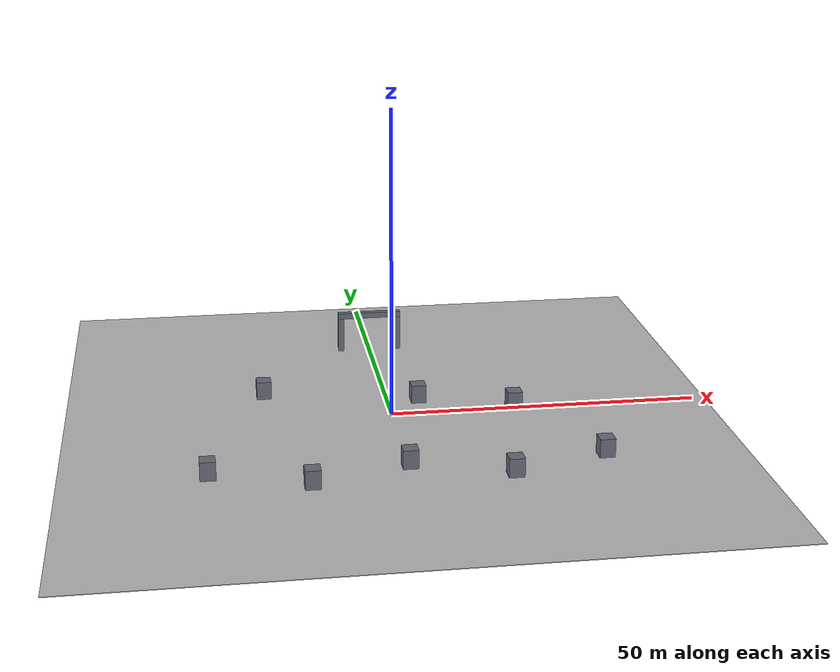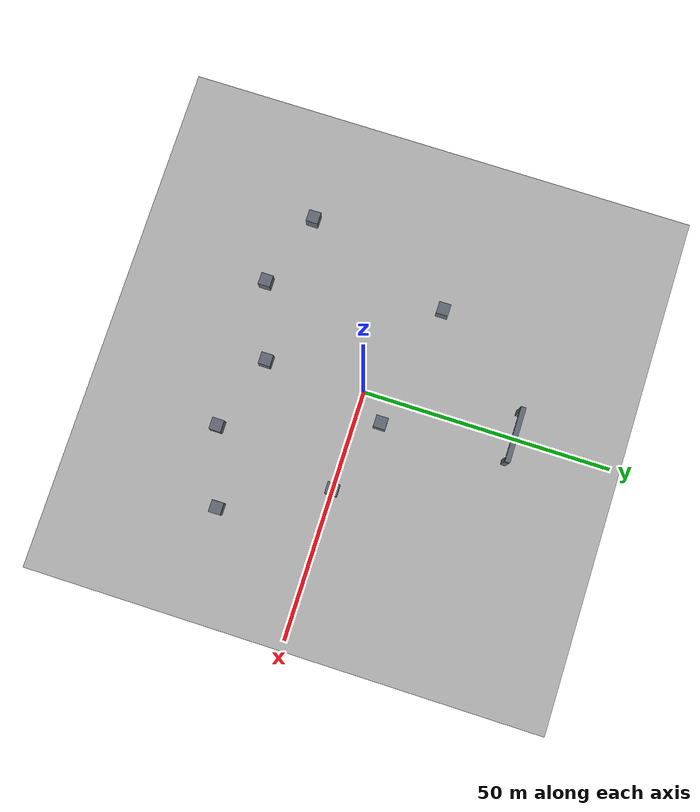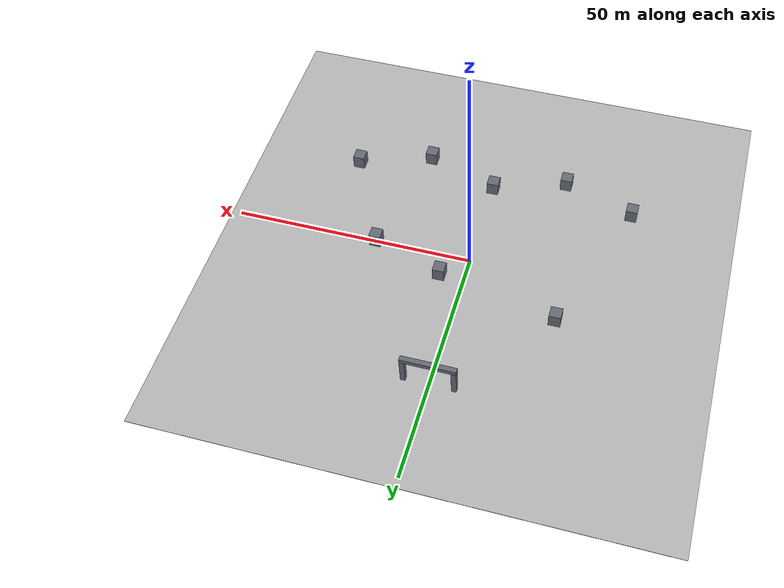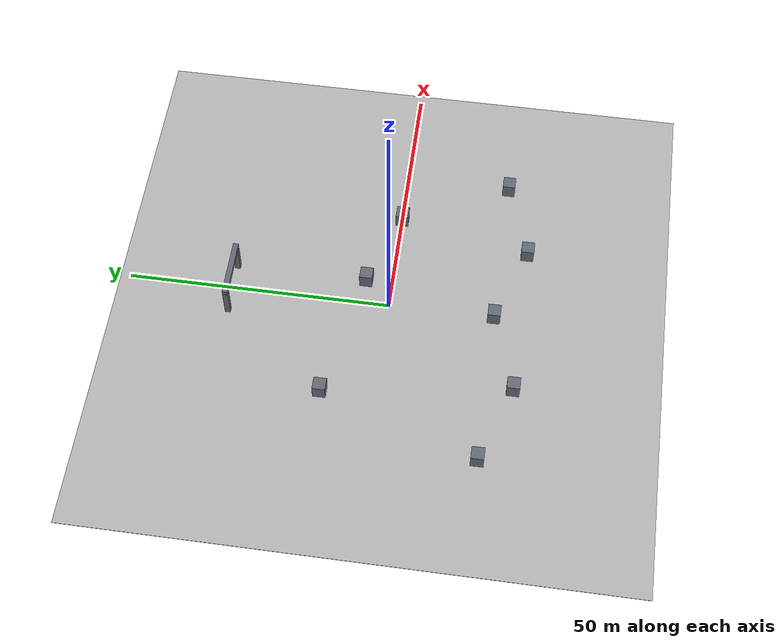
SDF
<?xml version="1.0" ?>
<sdf version="1.7">
  <world name="aerial_course">
    <physics type="ode">
      <max_step_size>0.01</max_step_size>
    </physics>
    <light name="sun" type="directional">
      <cast_shadows>true</cast_shadows>
      <pose>0 0 10 0 0 0</pose>
      <diffuse>0.8 0.8 0.8 1</diffuse>
      <specular>0.3 0.3 0.3 1</specular>
      <attenuation>
        <range>1000</range>
        <constant>0.9</constant>
        <linear>0.01</linear>
        <quadratic>0.001</quadratic>
      </attenuation>
      <direction>-0.5 0.3 -1.0</direction>
    </light>

    <model name="ground_plane">
      <static>true</static>
      <pose>0 0 -0.05 0 0 0</pose>
      <link name="link">
        <collision name="collision">
          <geometry>
            <box><size>104.0 104.0 0.1</size></box>
          </geometry>
        </collision>
        <visual name="visual">
          <geometry>
            <box><size>104.0 104.0 0.1</size></box>
          </geometry>
        </visual>
      </link>
    </model>

    <model name="obstacle_00">
      <static>true</static>
      <pose>-30.000 -20.000 1.500 0 0 0</pose>
      <link name="link">
        <collision name="collision">
          <geometry>
            <box><size>2.400 2.400 3.000</size></box>
          </geometry>
        </collision>
        <visual name="visual">
          <geometry>
            <box><size>2.400 2.400 3.000</size></box>
          </geometry>
          <material>
            <ambient>0.4 0.42 0.46 1</ambient>
            <diffuse>0.4 0.42 0.46 1</diffuse>
          </material>
        </visual>
      </link>
    </model>

    <model name="obstacle_01">
      <static>true</static>
      <pose>-15.000 -25.000 1.500 0 0 0</pose>
      <link name="link">
        <collision name="collision">
          <geometry>
            <box><size>2.400 2.400 3.000</size></box>
          </geometry>
        </collision>
        <visual name="visual">
          <geometry>
            <box><size>2.400 2.400 3.000</size></box>
          </geometry>
          <material>
            <ambient>0.4 0.42 0.46 1</ambient>
            <diffuse>0.4 0.42 0.46 1</diffuse>
          </material>
        </visual>
      </link>
    </model>

    <model name="obstacle_02">
      <static>true</static>
      <pose>0.000 -20.000 1.500 0 0 0</pose>
      <link name="link">
        <collision name="collision">
          <geometry>
            <box><size>2.400 2.400 3.000</size></box>
          </geometry>
        </collision>
        <visual name="visual">
          <geometry>
            <box><size>2.400 2.400 3.000</size></box>
          </geometry>
          <material>
            <ambient>0.4 0.42 0.46 1</ambient>
            <diffuse>0.4 0.42 0.46 1</diffuse>
          </material>
        </visual>
      </link>
    </model>

    <model name="obstacle_03">
      <static>true</static>
      <pose>15.000 -25.000 1.500 0 0 0</pose>
      <link name="link">
        <collision name="collision">
          <geometry>
            <box><size>2.400 2.400 3.000</size></box>
          </geometry>
        </collision>
        <visual name="visual">
          <geometry>
            <box><size>2.400 2.400 3.000</size></box>
          </geometry>
          <material>
            <ambient>0.4 0.42 0.46 1</ambient>
            <diffuse>0.4 0.42 0.46 1</diffuse>
          </material>
        </visual>
      </link>
    </model>

    <model name="obstacle_04">
      <static>true</static>
      <pose>30.000 -20.000 1.500 0 0 0</pose>
      <link name="link">
        <collision name="collision">
          <geometry>
            <box><size>2.400 2.400 3.000</size></box>
          </geometry>
        </collision>
        <visual name="visual">
          <geometry>
            <box><size>2.400 2.400 3.000</size></box>
          </geometry>
          <material>
            <ambient>0.4 0.42 0.46 1</ambient>
            <diffuse>0.4 0.42 0.46 1</diffuse>
          </material>
        </visual>
      </link>
    </model>

    <model name="obstacle_05">
      <static>true</static>
      <pose>20.000 0.000 1.500 0 0 0</pose>
      <link name="link">
        <collision name="collision">
          <geometry>
            <box><size>2.400 2.400 3.000</size></box>
          </geometry>
        </collision>
        <visual name="visual">
          <geometry>
            <box><size>2.400 2.400 3.000</size></box>
          </geometry>
          <material>
            <ambient>0.4 0.42 0.46 1</ambient>
            <diffuse>0.4 0.42 0.46 1</diffuse>
          </material>
        </visual>
      </link>
    </model>

    <model name="obstacle_06">
      <static>true</static>
      <pose>5.000 5.000 1.500 0 0 0</pose>
      <link name="link">
        <collision name="collision">
          <geometry>
            <box><size>2.400 2.400 3.000</size></box>
          </geometry>
        </collision>
        <visual name="visual">
          <geometry>
            <box><size>2.400 2.400 3.000</size></box>
          </geometry>
          <material>
            <ambient>0.4 0.42 0.46 1</ambient>
            <diffuse>0.4 0.42 0.46 1</diffuse>
          </material>
        </visual>
      </link>
    </model>

    <model name="obstacle_07">
      <static>true</static>
      <pose>-20.000 10.000 1.500 0 0 0</pose>
      <link name="link">
        <collision name="collision">
          <geometry>
            <box><size>2.400 2.400 3.000</size></box>
          </geometry>
        </collision>
        <visual name="visual">
          <geometry>
            <box><size>2.400 2.400 3.000</size></box>
          </geometry>
          <material>
            <ambient>0.4 0.42 0.46 1</ambient>
            <diffuse>0.4 0.42 0.46 1</diffuse>
          </material>
        </visual>
      </link>
    </model>

    <model name="obstacle_08">
      <static>true</static>
      <pose>-5.000 30.000 3.000 0 0 0</pose>
      <link name="link">
        <collision name="collision">
          <geometry>
            <box><size>1.000 1.000 6.000</size></box>
          </geometry>
        </collision>
        <visual name="visual">
          <geometry>
            <box><size>1.000 1.000 6.000</size></box>
          </geometry>
          <material>
            <ambient>0.4 0.42 0.46 1</ambient>
            <diffuse>0.4 0.42 0.46 1</diffuse>
          </material>
        </visual>
      </link>
    </model>

    <model name="obstacle_09">
      <static>true</static>
      <pose>5.000 30.000 3.000 0 0 0</pose>
      <link name="link">
        <collision name="collision">
          <geometry>
            <box><size>1.000 1.000 6.000</size></box>
          </geometry>
        </collision>
        <visual name="visual">
          <geometry>
            <box><size>1.000 1.000 6.000</size></box>
          </geometry>
          <material>
            <ambient>0.4 0.42 0.46 1</ambient>
            <diffuse>0.4 0.42 0.46 1</diffuse>
          </material>
        </visual>
      </link>
    </model>

    <model name="obstacle_10">
      <static>true</static>
      <pose>0.000 30.000 6.500 0 0 0</pose>
      <link name="link">
        <collision name="collision">
          <geometry>
            <box><size>11.000 1.000 1.000</size></box>
          </geometry>
        </collision>
        <visual name="visual">
          <geometry>
            <box><size>11.000 1.000 1.000</size></box>
          </geometry>
          <material>
            <ambient>0.4 0.42 0.46 1</ambient>
            <diffuse>0.4 0.42 0.46 1</diffuse>
          </material>
        </visual>
      </link>
    </model>

  </world>
</sdf>
